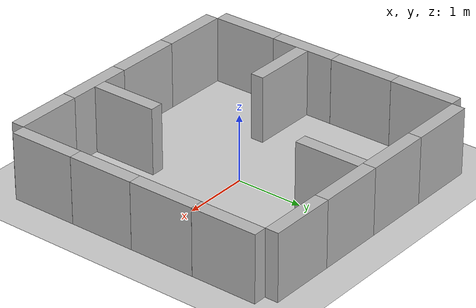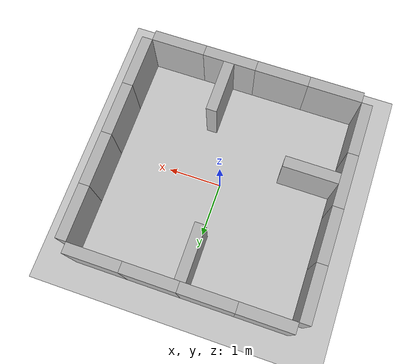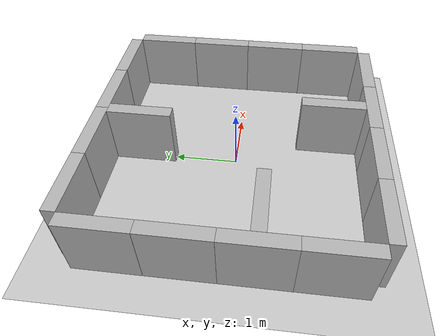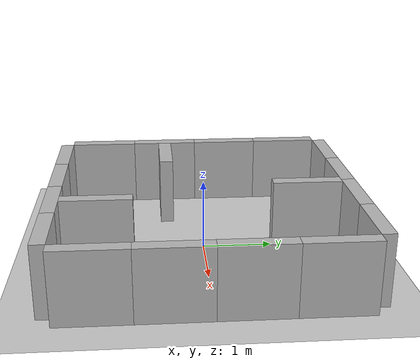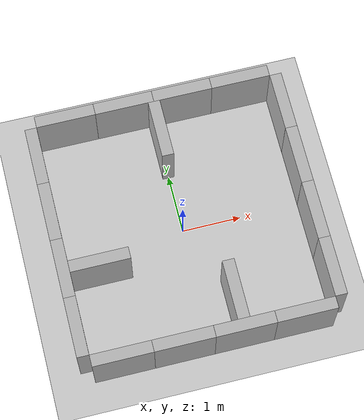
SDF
<sdf version="1.6">
 <world name="default">
  <scene><ambient>0.4 0.4 0.4 1</ambient><background>0.7 0.7 0.7 1</background><shadows>1</shadows></scene>
  <light name="sun" type="directional">
   <pose>0 0 10 0 -0 0</pose>
   <diffuse>0.8 0.8 0.8 1</diffuse>
   <specular>0.2 0.2 0.2 1</specular>
   <attenuation>
    <range>1000</range>
    <constant>0.9</constant>
    <linear>0.01</linear>
    <quadratic>0.001</quadratic>
   </attenuation>
   <direction>-0.5 0.1 -0.9</direction>
  </light>
  <model name="ground_plane">
   <static>1</static>
   <link name="link">
    <collision name="collision">
     <geometry><plane><normal>0 0 1</normal><size>100 100</size></plane></geometry>
     <surface>
      <contact><collide_bitmask>65535</collide_bitmask></contact>
      <friction><ode><mu>100</mu><mu2>50</mu2></ode></friction>
     </surface>
    </collision>
    <visual name="visual">
     <cast_shadows>0</cast_shadows>
     <geometry><plane><normal>0 0 1</normal><size>100 100</size></plane></geometry>
     <material>
      <script><uri>file://media/materials/scripts/gazebo.material</uri><name>Gazebo/Grey</name></script>
     </material>
    </visual>
   </link>
  </model>
  <physics name="default_physics" default="0" type="ode">
   <real_time_update_rate>1000</real_time_update_rate>
   <max_step_size>0.001</max_step_size>
   <real_time_factor>1</real_time_factor>
   <ode>
    <solver>
     <type>quick</type>
     <iters>150</iters>
     <precon_iters>0</precon_iters>
     <sor>1.4</sor>
     <use_dynamic_moi_rescaling>1</use_dynamic_moi_rescaling>
    </solver>
    <constraints>
     <cfm>1e-05</cfm>
     <erp>0.2</erp>
     <contact_max_correcting_vel>2000</contact_max_correcting_vel>
     <contact_surface_layer>0.01</contact_surface_layer>
    </constraints>
   </ode>
  </physics>
  <gravity>0 0 -9.8</gravity>
  <magnetic_field>6e-06 2.3e-05 -4.2e-05</magnetic_field>
  <atmosphere type="adiabatic"/>
  <audio><device>default</device></audio>
  <spherical_coordinates>
   <surface_model>EARTH_WGS84</surface_model>
   <latitude_deg>0</latitude_deg>
   <longitude_deg>0</longitude_deg>
   <elevation>0</elevation>
   <heading_deg>0</heading_deg>
  </spherical_coordinates>
  <model name="wall">
   <static>1</static>
   <pose>-0.5 -2.1 0.5 0 -0 0</pose>
   <link name="link">
    <inertial>
     <mass>1</mass>
     <inertia><ixx>0.083</ixx><ixy>0</ixy><ixz>0</ixz><iyy>0.083</iyy><iyz>0</iyz><izz>0.083</izz></inertia>
    </inertial>
    <collision name="collision"><geometry><box><size>1 0.2 1</size></box></geometry></collision>
    <visual name="visual"><geometry><box><size>1 0.2 1</size></box></geometry></visual>
   </link>
  </model>
  <model name="wall_0">
   <static>1</static>
   <pose>-0.5 2.1 0.5 0 -0 0</pose>
   <link name="link">
    <inertial>
     <mass>1</mass>
     <inertia><ixx>0.083</ixx><ixy>0</ixy><ixz>0</ixz><iyy>0.083</iyy><iyz>0</iyz><izz>0.083</izz></inertia>
    </inertial>
    <collision name="collision"><geometry><box><size>1 0.2 1</size></box></geometry></collision>
    <visual name="visual"><geometry><box><size>1 0.2 1</size></box></geometry></visual>
   </link>
  </model>
  <model name="wall_1">
   <static>1</static>
   <pose>-1.5 -2.1 0.5 0 -0 0</pose>
   <link name="link">
    <inertial>
     <mass>1</mass>
     <inertia><ixx>0.083</ixx><ixy>0</ixy><ixz>0</ixz><iyy>0.083</iyy><iyz>0</iyz><izz>0.083</izz></inertia>
    </inertial>
    <collision name="collision"><geometry><box><size>1 0.2 1</size></box></geometry></collision>
    <visual name="visual"><geometry><box><size>1 0.2 1</size></box></geometry></visual>
   </link>
  </model>
  <model name="wall_2">
   <static>1</static>
   <pose>0.5 -2.1 0.5 0 -0 0</pose>
   <link name="link">
    <inertial>
     <mass>1</mass>
     <inertia><ixx>0.083</ixx><ixy>0</ixy><ixz>0</ixz><iyy>0.083</iyy><iyz>0</iyz><izz>0.083</izz></inertia>
    </inertial>
    <collision name="collision"><geometry><box><size>1 0.2 1</size></box></geometry></collision>
    <visual name="visual"><geometry><box><size>1 0.2 1</size></box></geometry></visual>
   </link>
  </model>
  <model name="wall_3">
   <static>1</static>
   <pose>1.5 -2.1 0.5 0 -0 0</pose>
   <link name="link">
    <inertial>
     <mass>1</mass>
     <inertia><ixx>0.083</ixx><ixy>0</ixy><ixz>0</ixz><iyy>0.083</iyy><iyz>0</iyz><izz>0.083</izz></inertia>
    </inertial>
    <collision name="collision"><geometry><box><size>1 0.2 1</size></box></geometry></collision>
    <visual name="visual"><geometry><box><size>1 0.2 1</size></box></geometry></visual>
   </link>
  </model>
  <model name="wall_4">
   <static>1</static>
   <pose>0.5 2.1 0.5 0 -0 0</pose>
   <link name="link">
    <inertial>
     <mass>1</mass>
     <inertia><ixx>0.083</ixx><ixy>0</ixy><ixz>0</ixz><iyy>0.083</iyy><iyz>0</iyz><izz>0.083</izz></inertia>
    </inertial>
    <collision name="collision"><geometry><box><size>1 0.2 1</size></box></geometry></collision>
    <visual name="visual"><geometry><box><size>1 0.2 1</size></box></geometry></visual>
   </link>
  </model>
  <model name="wall_5">
   <static>1</static>
   <pose>1.5 2.1 0.5 0 -0 0</pose>
   <link name="link">
    <inertial>
     <mass>1</mass>
     <inertia><ixx>0.083</ixx><ixy>0</ixy><ixz>0</ixz><iyy>0.083</iyy><iyz>0</iyz><izz>0.083</izz></inertia>
    </inertial>
    <collision name="collision"><geometry><box><size>1 0.2 1</size></box></geometry></collision>
    <visual name="visual"><geometry><box><size>1 0.2 1</size></box></geometry></visual>
   </link>
  </model>
  <model name="wall_6">
   <static>1</static>
   <pose>-1.5 2.1 0.5 0 -0 0</pose>
   <link name="link">
    <inertial>
     <mass>1</mass>
     <inertia><ixx>0.083</ixx><ixy>0</ixy><ixz>0</ixz><iyy>0.083</iyy><iyz>0</iyz><izz>0.083</izz></inertia>
    </inertial>
    <collision name="collision"><geometry><box><size>1 0.2 1</size></box></geometry></collision>
    <visual name="visual"><geometry><box><size>1 0.2 1</size></box></geometry></visual>
   </link>
  </model>
  <model name="wall_7">
   <static>1</static>
   <pose>2.1 1.5 0.5 -3e-06 -0 1.56999</pose>
   <link name="link">
    <inertial>
     <mass>1</mass>
     <inertia><ixx>0.083</ixx><ixy>0</ixy><ixz>0</ixz><iyy>0.083</iyy><iyz>0</iyz><izz>0.083</izz></inertia>
    </inertial>
    <collision name="collision"><geometry><box><size>1 0.2 1</size></box></geometry></collision>
    <visual name="visual"><geometry><box><size>1 0.2 1</size></box></geometry></visual>
   </link>
  </model>
  <model name="wall_8">
   <static>1</static>
   <pose>2.1 0.5 0.5 0 -0 1.57</pose>
   <link name="link">
    <inertial>
     <mass>1</mass>
     <inertia><ixx>0.083</ixx><ixy>0</ixy><ixz>0</ixz><iyy>0.083</iyy><iyz>0</iyz><izz>0.083</izz></inertia>
    </inertial>
    <collision name="collision"><geometry><box><size>1 0.2 1</size></box></geometry></collision>
    <visual name="visual"><geometry><box><size>1 0.2 1</size></box></geometry></visual>
   </link>
  </model>
  <model name="wall_8_clone">
   <static>1</static>
   <pose>2.1 -0.5 0.5 0 -0 1.57</pose>
   <link name="link">
    <inertial>
     <mass>1</mass>
     <inertia><ixx>0.083</ixx><ixy>0</ixy><ixz>0</ixz><iyy>0.083</iyy><iyz>0</iyz><izz>0.083</izz></inertia>
    </inertial>
    <collision name="collision"><geometry><box><size>1 0.2 1</size></box></geometry></collision>
    <visual name="visual"><geometry><box><size>1 0.2 1</size></box></geometry></visual>
   </link>
  </model>
  <model name="wall_8_clone_clone">
   <static>1</static>
   <pose>2.1 -1.5 0.5 0 -0 1.57</pose>
   <link name="link">
    <inertial>
     <mass>1</mass>
     <inertia><ixx>0.083</ixx><ixy>0</ixy><ixz>0</ixz><iyy>0.083</iyy><iyz>0</iyz><izz>0.083</izz></inertia>
    </inertial>
    <collision name="collision"><geometry><box><size>1 0.2 1</size></box></geometry></collision>
    <visual name="visual"><geometry><box><size>1 0.2 1</size></box></geometry></visual>
   </link>
  </model>
  <model name="wall_7_clone">
   <static>1</static>
   <pose>-2.1 1.5 0.5 0 -0 1.57</pose>
   <link name="link">
    <inertial>
     <mass>1</mass>
     <inertia><ixx>0.083</ixx><ixy>0</ixy><ixz>0</ixz><iyy>0.083</iyy><iyz>0</iyz><izz>0.083</izz></inertia>
    </inertial>
    <collision name="collision"><geometry><box><size>1 0.2 1</size></box></geometry></collision>
    <visual name="visual"><geometry><box><size>1 0.2 1</size></box></geometry></visual>
   </link>
  </model>
  <model name="wall_7_clone_clone">
   <static>1</static>
   <pose>-2.1 0.5 0.5 0 -0 1.57</pose>
   <link name="link">
    <inertial>
     <mass>1</mass>
     <inertia><ixx>0.083</ixx><ixy>0</ixy><ixz>0</ixz><iyy>0.083</iyy><iyz>0</iyz><izz>0.083</izz></inertia>
    </inertial>
    <collision name="collision"><geometry><box><size>1 0.2 1</size></box></geometry></collision>
    <visual name="visual"><geometry><box><size>1 0.2 1</size></box></geometry></visual>
   </link>
  </model>
  <model name="wall_7_clone_clone_clone">
   <static>1</static>
   <pose>-2.1 -0.5 0.5 0 -0 1.57</pose>
   <link name="link">
    <inertial>
     <mass>1</mass>
     <inertia><ixx>0.083</ixx><ixy>0</ixy><ixz>0</ixz><iyy>0.083</iyy><iyz>0</iyz><izz>0.083</izz></inertia>
    </inertial>
    <collision name="collision"><geometry><box><size>1 0.2 1</size></box></geometry></collision>
    <visual name="visual"><geometry><box><size>1 0.2 1</size></box></geometry></visual>
   </link>
  </model>
  <model name="wall_7_clone_clone_clone_clone">
   <static>1</static>
   <pose>-2.1 -1.5 0.5 0 -0 1.57</pose>
   <link name="link">
    <inertial>
     <mass>1</mass>
     <inertia><ixx>0.083</ixx><ixy>0</ixy><ixz>0</ixz><iyy>0.083</iyy><iyz>0</iyz><izz>0.083</izz></inertia>
    </inertial>
    <collision name="collision"><geometry><box><size>1 0.2 1</size></box></geometry></collision>
    <visual name="visual"><geometry><box><size>1 0.2 1</size></box></geometry></visual>
   </link>
  </model>
  <model name="wall_6_clone">
   <static>1</static>
   <pose>-1.5 -0.5 0.5 0 -0 0</pose>
   <link name="link">
    <inertial>
     <mass>1</mass>
     <inertia><ixx>0.083</ixx><ixy>0</ixy><ixz>0</ixz><iyy>0.083</iyy><iyz>0</iyz><izz>0.083</izz></inertia>
    </inertial>
    <collision name="collision"><geometry><box><size>1 0.2 1</size></box></geometry></collision>
    <visual name="visual"><geometry><box><size>1 0.2 1</size></box></geometry></visual>
   </link>
  </model>
  <model name="wall_7_clone_0">
   <static>1</static>
   <pose>0 1.5 0.5 0 -0 1.57</pose>
   <link name="link">
    <inertial>
     <mass>1</mass>
     <inertia><ixx>0.083</ixx><ixy>0</ixy><ixz>0</ixz><iyy>0.083</iyy><iyz>0</iyz><izz>0.083</izz></inertia>
    </inertial>
    <collision name="collision"><geometry><box><size>1 0.2 1</size></box></geometry></collision>
    <visual name="visual"><geometry><box><size>1 0.2 1</size></box></geometry></visual>
   </link>
  </model>
  <model name="wall_7_clone_0_clone">
   <static>1</static>
   <pose>0.5 -1.5 0.5 0 -0 1.57</pose>
   <link name="link">
    <inertial>
     <mass>1</mass>
     <inertia><ixx>0.083</ixx><ixy>0</ixy><ixz>0</ixz><iyy>0.083</iyy><iyz>0</iyz><izz>0.083</izz></inertia>
    </inertial>
    <collision name="collision"><geometry><box><size>1 0.2 1</size></box></geometry></collision>
    <visual name="visual"><geometry><box><size>1 0.2 1</size></box></geometry></visual>
   </link>
  </model>
 </world>
</sdf>
